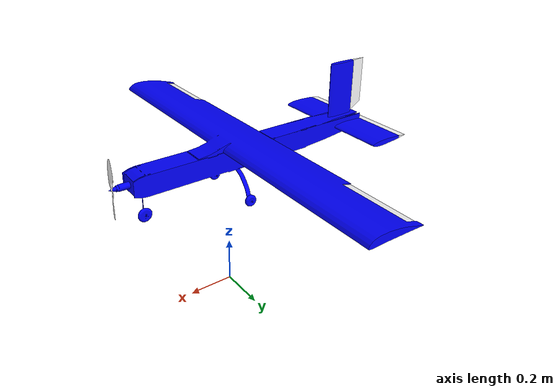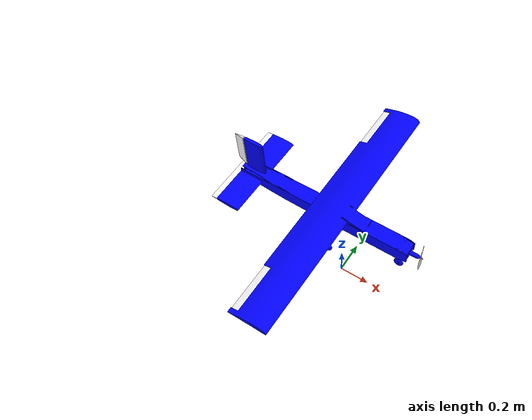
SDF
<?xml version="1.0"?>
<sdf version="1.9">
  <model name="miguel_with_ardupilot">

    <plugin name="ArduPilotPlugin" filename="ArduPilotPlugin">
      <!-- Port settings -->
      <fdm_addr>127.0.0.1</fdm_addr>
      <fdm_port_in>9002</fdm_port_in>
      <connectionTimeoutMaxCount>5</connectionTimeoutMaxCount>
      <lock_step>1</lock_step>

      <modelXYZToAirplaneXForwardZDown degrees="true">0 0 0 180 0 0</modelXYZToAirplaneXForwardZDown>
      <gazeboXYZToNED degrees="true">0 0 0 180 0 90</gazeboXYZToNED>

      <!--
          incoming control command [0, 1]
          so offset it by 0 to get [0, 1]
          and divide max target by 1.
          offset = 0
          multiplier = 838 max rpm / 1 = 838
        -->

      <!--
          SERVO3_FUNCTION   70 (Throttle)
          SERVO3_MAX        2000
          SERVO3_MIN        1000
          SERVO3_REVERSED   0
          SERVO3_TRIM       1000
       -->
        <control channel="2">
          <jointName>rotor_pusher_joint</jointName>
          <type>VELOCITY</type>
          <useForce>1</useForce>
          <multiplier>800</multiplier>
          <offset>0</offset>
          <servo_min>1000</servo_min>
          <servo_max>2000</servo_max>
        </control>

        <control channel="0">
          <jointName>left_aileron_joint</jointName>
          <type>POSITION</type>
          <useForce>1</useForce>
          <multiplier>1.0</multiplier>
          <offset>-0.5</offset>
          <servo_min>1100</servo_min>
          <servo_max>1900</servo_max>
        </control>

        <control channel="1">
          <jointName>right_aileron_joint</jointName>
          <type>POSITION</type>
          <useForce>1</useForce>
          <multiplier>1.0</multiplier>
          <offset>-0.5</offset>
          <servo_min>1100</servo_min>
          <servo_max>1900</servo_max>
        </control>

        <control channel="3">
          <jointName>elevators_joint</jointName>
          <type>POSITION</type>
          <useForce>1</useForce>
          <multiplier>1.0</multiplier>
          <offset>-0.5</offset>
          <servo_min>1100</servo_min>
          <servo_max>1900</servo_max>
        </control>

        <control channel="4">
          <jointName>rudderevators_joint</jointName>
          <type>POSITION</type>
          <useForce>1</useForce>
          <multiplier>1.0</multiplier>
          <offset>-0.5</offset>
          <servo_min>1100</servo_min>
          <servo_max>1900</servo_max>
        </control>

    </plugin>

       <!-- plugins -->
    <plugin filename="gz-sim-joint-state-publisher-system"
      name="gz::sim::systems::JointStatePublisher">
    </plugin>

    <!-- AERODYNAMICS -->

    <!-- rotor_pusher lift-drag -->
    <plugin filename="gz-sim-lift-drag-system"
        name="gz::sim::systems::LiftDrag">
      <a0>0.30</a0>
      <alpha_stall>1.4</alpha_stall>
      <cla>4.2500</cla>
      <cda>0.10</cda>
      <cma>0.0</cma>
      <cla_stall>-0.025</cla_stall>
      <cda_stall>0.0</cda_stall>
      <cma_stall>0.0</cma_stall>
      <area>0.0042815 </area>
      <air_density>1.2041</air_density>
      <cp>0.074205 0 0</cp>
      <forward>1 0 0</forward>
      <upward>0 0 1</upward>
      <link_name>iris_prop_ccw</link_name>
    </plugin>
    <plugin filename="gz-sim-lift-drag-system"
        name="gz::sim::systems::LiftDrag">
      <a0>0.30</a0>
      <alpha_stall>1.4</alpha_stall>
      <cla>4.2500</cla>
      <cda>0.10</cda>
      <cma>0.0</cma>
      <cla_stall>-0.025</cla_stall>
      <cda_stall>0.0</cda_stall>
      <cma_stall>0.0</cma_stall>
      <area>0.0042815 </area>
      <air_density>1.2041</air_density>
      <cp>-0.074205 0 0</cp>
      <forward>-1 0 0</forward>
      <upward>0 0 1</upward>
      <link_name>iris_prop_ccw</link_name>
    </plugin>

        <!-- left wing lift-drag -->
    <plugin filename="gz-sim-lift-drag-system"
        name="gz::sim::systems::LiftDrag">
      <a0>0.13</a0>
      <cla>3.7</cla>
      <cda>0.06417112299</cda>
      <cma>0.0</cma>
      <alpha_stall>0.3391428111</alpha_stall>
      <cla_stall>-3.85</cla_stall>
      <cda_stall>-0.9233984055</cda_stall>
      <cma_stall>0.0</cma_stall>
      <cp>-0.025 0.3 0</cp>
      <area>0.192</area>
      <air_density>1.2041</air_density>
      <forward>1 0 0</forward>
      <upward>0 0 1</upward>
      <link_name>body</link_name>
    </plugin>
        <!-- right wing lift-drag -->
    <plugin filename="gz-sim-lift-drag-system"
        name="gz::sim::systems::LiftDrag">
      <a0>0.13</a0>
      <cla>3.7</cla>
      <cda>0.06417112299</cda>
      <cma>0.0</cma>
      <alpha_stall>0.3391428111</alpha_stall>
      <cla_stall>-3.85</cla_stall>
      <cda_stall>-0.9233984055</cda_stall>
      <cma_stall>0.0</cma_stall>
      <cp>-0.025 -0.3 0</cp>
      <area>0.192</area>
      <air_density>1.2041</air_density>
      <forward>1 0 0</forward>
      <upward>0 0 1</upward>
      <link_name>body</link_name>
    </plugin>

    <!-- left aileron lift-drag -->
    <plugin filename="gz-sim-lift-drag-system"
        name="gz::sim::systems::LiftDrag">
      <a0>0.15</a0>
      <cla>3.5</cla>
      <cda>0.06417112299</cda>
      <cma>0.0</cma>
      <alpha_stall>0.6391428111</alpha_stall>
      <cla_stall>-3.85</cla_stall>
      <cda_stall>-0.9233984055</cda_stall>
      <cma_stall>0.0</cma_stall>
      <cp>-0.30 0.75 -0.005</cp>
      <area>0.010</area>
      <air_density>1.2041</air_density>
      <forward>1 0 0</forward>
      <upward>0 0 1</upward>
      <link_name>body</link_name>
      <control_joint_name>left_aileron_joint</control_joint_name>
      <control_joint_rad_to_cl>-2.0</control_joint_rad_to_cl>
    </plugin>
    <!-- right aileron lift-drag --> <!-- right aileron lift-drag -->
    <plugin filename="gz-sim-lift-drag-system"
        name="gz::sim::systems::LiftDrag">
      <a0>0.15</a0>
      <cla>3.5</cla>
      <cda>0.06417112299</cda>
      <cma>0.0</cma>
      <alpha_stall>0.6391428111</alpha_stall>
      <cla_stall>-3.85</cla_stall>
      <cda_stall>-0.9233984055</cda_stall>
      <cma_stall>0.0</cma_stall>
      <cp>-0.30 -0.75 -0.005</cp>
      <area>0.010</area>
      <air_density>1.2041</air_density>
      <forward>1 0 0</forward>
      <upward>0 0 1</upward>
      <link_name>body</link_name>
      <control_joint_name>right_aileron_joint</control_joint_name>
      <control_joint_rad_to_cl>2.0</control_joint_rad_to_cl>
    </plugin>

     <!-- elevators lift-drag -->
        <plugin filename="gz-sim-lift-drag-system"
        name="gz::sim::systems::LiftDrag">
      <a0>0.087</a0>
      <cla>3.5</cla>
      <cda>0.06417112299</cda>
      <cma>0.0</cma>
      <alpha_stall>0.51</alpha_stall>
      <cla_stall>-3.5</cla_stall>
      <cda_stall>-0.9</cda_stall>
      <cma_stall>0.0</cma_stall>
      <cp>-0.715 0 0.14</cp>
      <area>0.010</area>
      <air_density>1.2041</air_density>
      <forward>1 0 0</forward>
      <upward>0 0 1</upward>
      <link_name>body</link_name>
      <control_joint_name>elevators_joint</control_joint_name>
      <control_joint_rad_to_cl>-2.0</control_joint_rad_to_cl>
    </plugin>

     <!-- Rudder lift-drag -->
       <!-- elevators lift-drag -->
      <plugin filename="gz-sim-lift-drag-system"
       name="gz::sim::systems::LiftDrag">
      <a0>0.087</a0>
      <cla>3.5</cla>
      <cda>0.06417112299</cda>
      <cma>0.0</cma>
      <alpha_stall>0.51</alpha_stall>
      <cla_stall>-3.5</cla_stall>
      <cda_stall>-0.9</cda_stall>
      <cma_stall>0.0</cma_stall>
      <cp>-0.71 0 0.32</cp>
      <area>0.010</area>
      <air_density>1.2041</air_density>
      <forward>1 0 0</forward>
      <upward>0 1 0</upward>
      <link_name>body</link_name>
      <control_joint_name>rudderevators_joint</control_joint_name>
      <control_joint_rad_to_cl>-1.0</control_joint_rad_to_cl>
    </plugin>

    <static>false</static>
    <pose>0 0 0.5 0 0 0</pose>
    <!-- Main fuselage -->
    <link name="body">
      <pose>0 0 0 0 0 0</pose>

      <visual name="body_visual">
        <geometry>
          <mesh>
            <uri>model://miguel_with_ardupilot/meshes/corpo.dae</uri>
          </mesh>
        </geometry>

        <material>
         <ambient>0 0 1 1</ambient> <!-- Blue -->
         </material>

      </visual>

      <collision name="body_collision">
          <geometry>
          <mesh>
            <uri>model://miguel_with_ardupilot/meshes/body.dae</uri>
          </mesh>
          </geometry>
      </collision>

          <!-- Barometer -->

      <sensor name="air_pressure_sensor" type="air_pressure">
        <always_on>true</always_on>
        <update_rate>30</update_rate>
        <plugin name="gz::sim::systems::AirPressure" filename="gz-sim-air-pressure-system"/>
      </sensor>

      <!-- Magnetometer -->
      <sensor name="magnetometer_sensor" type="magnetometer">
        <always_on>true</always_on>
        <update_rate>100</update_rate>
        <plugin name="gz::sim::systems::Magnetometer" filename="gz-sim-magnetometer-system"/>
      </sensor>

      <!-- GPS -->
      <sensor name="navsat_sensor" type="navsat">
        <always_on>true</always_on>
        <update_rate>10</update_rate>
        <plugin name="gz::sim::systems::NavSat" filename="gz-sim-navsat-system"/>
      </sensor>

      <!-- IMU -->
      <sensor name="imu_sensor" type="imu">
        <always_on>true</always_on>
        <update_rate>1000</update_rate>
        <plugin name="gz::sim::systems::Imu" filename="gz-sim-imu-system"/>
      </sensor>

      <!-- Altimeter -->
      <sensor name="altimeter_sensor" type="altimeter">
        <always_on>true</always_on>
        <update_rate>10</update_rate>
        <plugin name="gz::sim::systems::Altimeter" filename="gz-sim-altimeter-system"/>
      </sensor>

       <!-- Air_Speed -->

      <inertial>
        <mass>3.3</mass>
        <inertia>
          <ixx>0.170</ixx>
          <ixy>0.0</ixy>
          <ixz>0.019</ixz>
          <iyy>0.289</iyy>
          <iyz>0.0</iyz>
          <izz>0.443</izz>
        </inertia>
      </inertial>
    </link>

    <link name="left_aileron">
      <pose>-0.16 -0.67 0.17 0 0 0</pose>

      <visual name="left_aileron_visual">
          <geometry>
            <mesh>
              <uri>model://miguel_with_ardupilot/meshes/left_aileron.dae</uri>
            </mesh>
          </geometry>

          <material>
            <diffuse>1.0 1.0 1.0</diffuse>
            <specular>1.0 1.0 1.0</specular>
            <pbr>
              <metal>
                  <albedo_map>model://skywalker_x8/materials/textures/blue_metal/blue_metal_normal.jpg</albedo_map>
                  <metalness>0.5</metalness>
              </metal>
            </pbr>
          </material>
      </visual>

      <collision name="left_aileron_collision">
          <geometry>
            <box>
              <size>0.07 0.3 0.05</size>
            </box>
          </geometry>
      </collision>

      <inertial>
          <mass>0.01</mass>
          <inertia>
            <ixx>0.003</ixx>
            <ixy>0</ixy>
            <ixz>0</ixz>
            <iyy>0.003</iyy>
            <iyz>0</iyz>
            <izz>0.003</izz>
          </inertia>
       </inertial>
   </link>

    <joint name="left_aileron_joint" type="revolute">
      <parent>body</parent>
      <child>left_aileron</child>

      <pose>0.013 0 0 0 0 0</pose>

      <axis>
        <xyz>0 1 0</xyz> <!-- eixo de rotação, ajustar conforme o modelo -->
        <limit>
          <lower>-0.5</lower>   <!-- cerca de -30° -->
          <upper>0.5</upper>    <!-- cerca de +30° -->
        </limit>
      </axis>
    </joint>

   <link name="right_aileron">
      <pose>-0.16 0.67 0.17 0 0 0</pose>

      <visual name="right_aileron_visual">
          <geometry>
            <mesh>
              <uri>model://miguel_with_ardupilot/meshes/left_aileron.dae</uri>
            </mesh>
          </geometry>

        <material>
          <diffuse>1.0 1.0 1.0</diffuse>
          <specular>1.0 1.0 1.0</specular>
          <pbr>
            <metal>
                <albedo_map>model://skywalker_x8/materials/textures/blue_metal/blue_metal_normal.jpg</albedo_map>
                <metalness>0.5</metalness>
            </metal>
          </pbr>
        </material>
      </visual>

      <collision name="right_aileron_collision">
          <geometry>
            <box>
              <size>0.07 0.3 0.05</size>
            </box>
          </geometry>
      </collision>

        <inertial>
          <mass>0.01</mass>
          <inertia>
            <ixx>0.003</ixx>
            <ixy>0</ixy>
            <ixz>0</ixz>
            <iyy>0.003</iyy>
            <iyz>0</iyz>
            <izz>0.003</izz>
          </inertia>
        </inertial>
    </link>

    <joint name="right_aileron_joint" type="revolute">
      <parent>body</parent>
      <child>right_aileron</child>

      <pose>0.013 0 0 0 0 0</pose>

      <axis>
        <xyz>0 1 0</xyz> <!-- eixo de rotação, ajustar conforme o modelo-->
        <limit>
          <lower>-0.5</lower>   <!-- cerca de -30° -->
          <upper>0.5</upper>    <!-- cerca de +30° -->
        </limit>
      </axis>
    </joint>

    <link name="iris_prop_ccw">
      <pose>0.512 0 0.12 0 1.5707963267949 0</pose>

      <visual name="iris_prop_ccw_visual">
          <geometry>
            <mesh>
              <uri>model://miguel_with_ardupilot/meshes/iris_prop_ccw.dae</uri>
            </mesh>
          </geometry>

        <material>
          <diffuse>1.0 1.0 1.0</diffuse>
          <specular>1.0 1.0 1.0</specular>
          <pbr>
            <metal>
                <albedo_map>model://skywalker_x8/materials/textures/blue_metal/blue_metal_basecolor.jpg</albedo_map>
                <metalness>0.5</metalness>
            </metal>
          </pbr>
        </material>
     </visual>

      <collision name="iris_prop_ccw_collision">
          <geometry>
            <box>
              <size>0.265 0.03 0.02</size>
            </box>
          </geometry>
      </collision>

      <inertial>
          <mass>0.01</mass>
          <inertia>
            <ixx>0.003</ixx>
            <ixy>0</ixy>
            <ixz>0</ixz>
            <iyy>0.003</iyy>
            <iyz>0</iyz>
            <izz>0.003</izz>
          </inertia>
      </inertial>
    </link>

    <joint name='rotor_pusher_joint' type='revolute'>
      <parent>body</parent>
      <child>iris_prop_ccw</child>
      <pose>-0.004 0 0 0 0 0</pose>

      <axis>
        <xyz>0 0 1</xyz>
        <limit>
          <lower>-1e+16</lower>
          <upper>1e+16</upper>
        </limit>
        <dynamics>
          <damping>0.002</damping>
        </dynamics>
      </axis>
    </joint>

    <link name="elevators">
      <pose>-0.715 0 0.14 0 0 0</pose>
      <visual name="elevators_visual">
          <geometry>
            <mesh>
              <uri>model://miguel_with_ardupilot/meshes/elevators.dae</uri>
            </mesh>
          </geometry>

        <material>
          <diffuse>1.0 1.0 1.0</diffuse>
          <specular>1.0 1.0 1.0</specular>
          <pbr>
            <metal>
                <albedo_map>model://skywalker_x8/materials/textures/blue_metal/blue_metal_normal.jpg</albedo_map>
                <metalness>0.5</metalness>
            </metal>
          </pbr>
        </material>
     </visual>

      <collision name="elevators_collision">
          <geometry>
            <box>
              <size>0.05 0.6 0.015</size>
            </box>
          </geometry>
      </collision>

        <inertial>
          <mass>0.01</mass>
          <inertia>
            <ixx>0.003</ixx>
            <ixy>0</ixy>
            <ixz>0</ixz>
            <iyy>0.003</iyy>
            <iyz>0</iyz>
            <izz>0.003</izz>
          </inertia>
        </inertial>
    </link>

     <joint name="elevators_joint" type="revolute">
      <parent>body</parent>
      <child>elevators</child>

      <pose>0.015 0 0 0 0 0</pose>

      <axis>
        <xyz>0 1 0</xyz> <!-- eixo de rotação, ajustar conforme o modelo-->
        <limit>
          <lower>-0.5</lower>   <!-- cerca de -30° -->
          <upper>0.5</upper>    <!-- cerca de +30° -->
        </limit>
      </axis>
    </joint>

    <link name="rudder">
      <pose>-0.7 0 0.3035 0 0 0</pose>
      <visual name="rudder_visual">
          <geometry>
            <mesh>
              <uri>model://miguel_with_ardupilot/meshes/rudder.dae</uri>
            </mesh>
          </geometry>

        <material>
          <diffuse>1.0 1.0 1.0</diffuse>
          <specular>1.0 1.0 1.0</specular>
          <pbr>
            <metal>
                <albedo_map>model://skywalker_x8/materials/textures/blue_metal/blue_metal_normal.jpg</albedo_map>
                <metalness>0.5</metalness>
            </metal>
          </pbr>
        </material>
     </visual>

      <collision name="rudder_collision">
          <geometry>
            <box>
              <size>0.09 0.03 0.24</size>
            </box>
          </geometry>
      </collision>

        <inertial>
          <mass>0.01</mass>
          <inertia>
            <ixx>0.003</ixx>
            <ixy>0</ixy>
            <ixz>0</ixz>
            <iyy>0.003</iyy>
            <iyz>0</iyz>
            <izz>0.003</izz>
          </inertia>
        </inertial>
    </link>

    <joint name="rudderevators_joint" type="revolute">
          <parent>body</parent>
          <child>rudder</child>

          <pose>0.021 0 0 0 0 0</pose>

          <axis>
            <xyz>0 0 1</xyz> <!-- eixo de rotação, ajustar conforme o modelo-->
            <limit>
              <lower>-0.5</lower>   <!-- cerca de -30° -->
              <upper>0.5</upper>    <!-- cerca de +30° -->
            </limit>
          </axis>
    </joint>

  </model>
</sdf>
